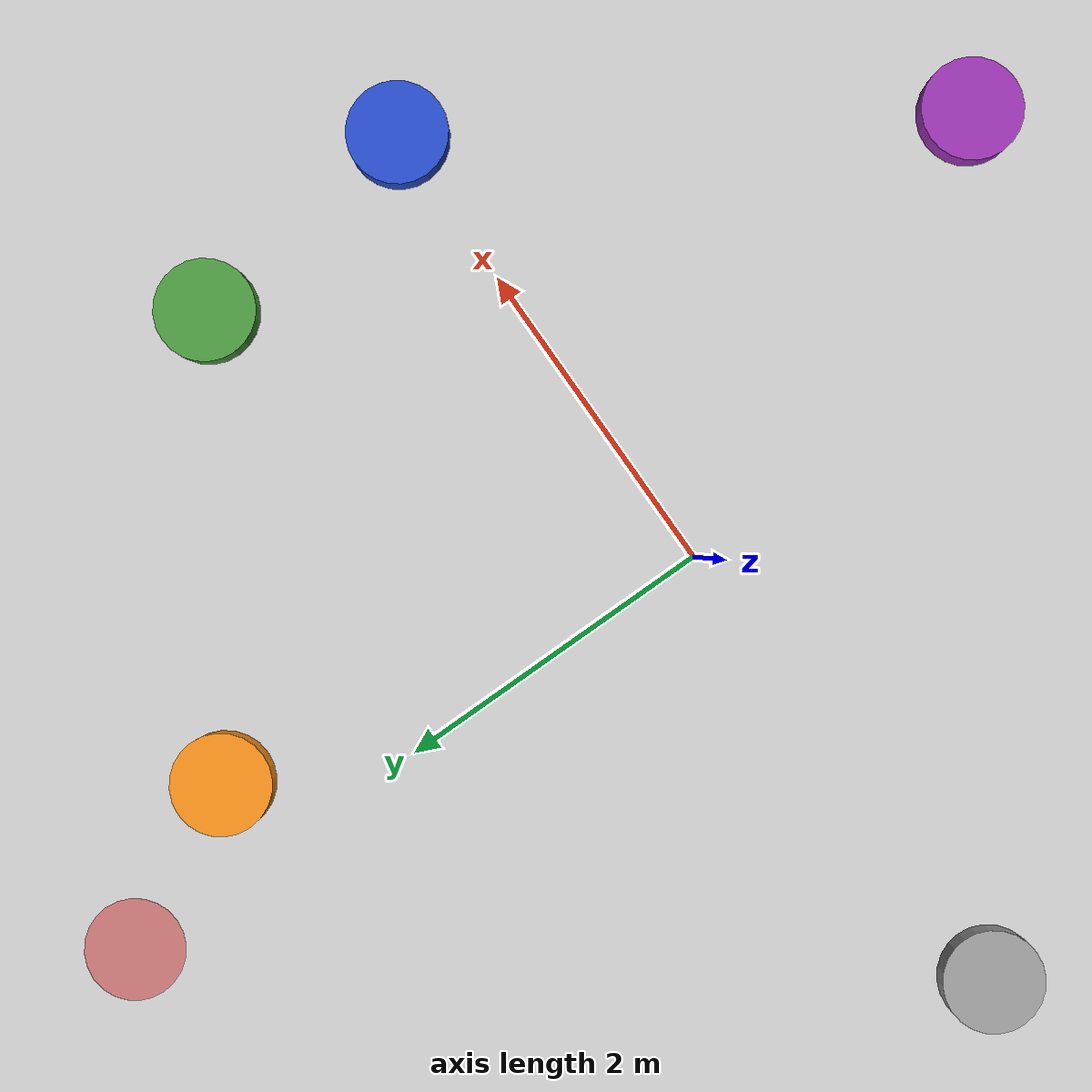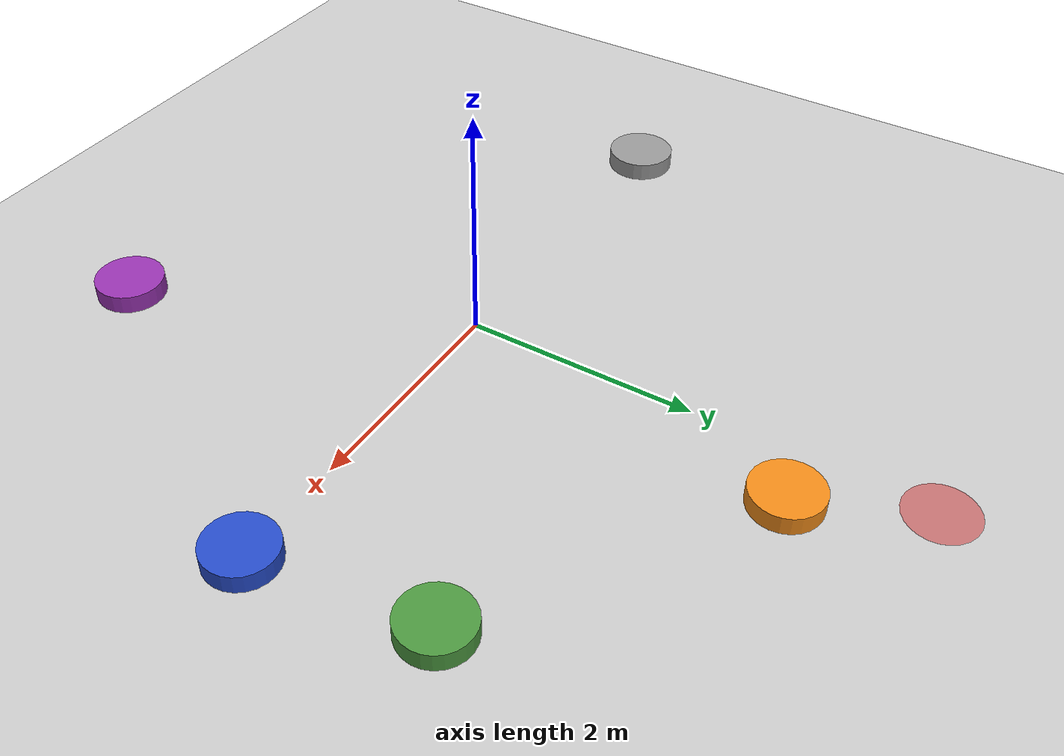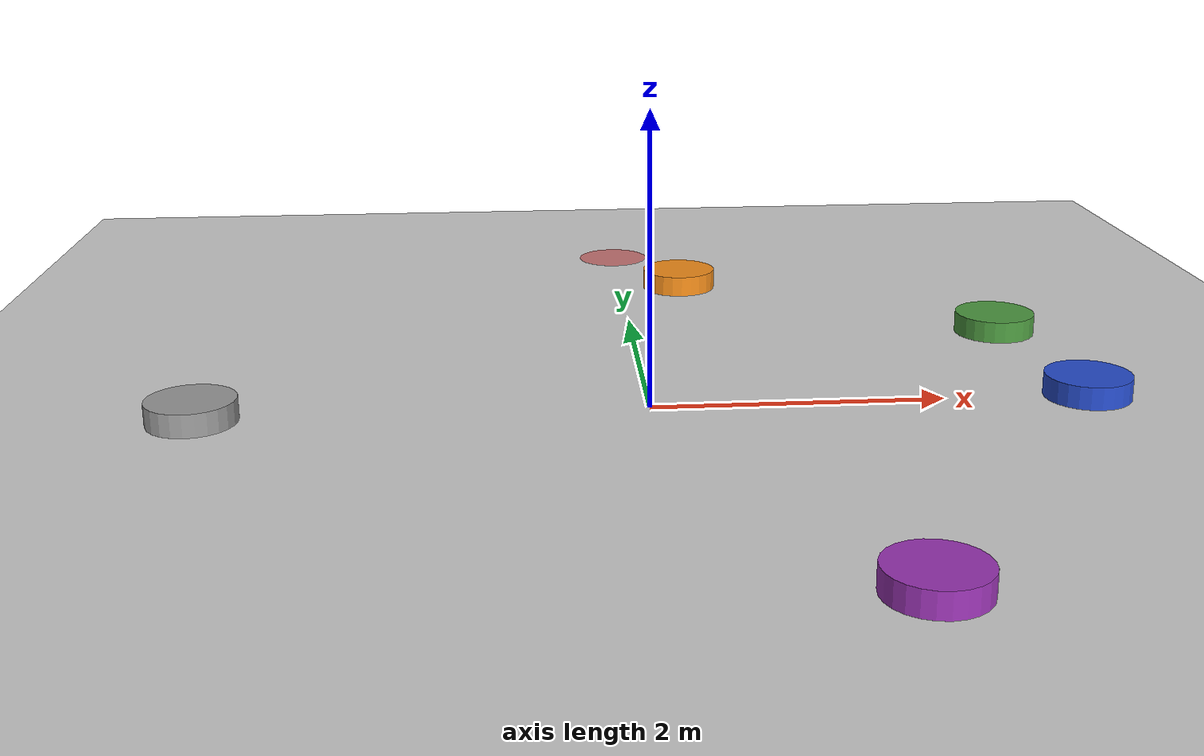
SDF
<sdf version="1.4">
 <world name="default">
  <physics name="default" default="true" type="simbody">
   <real_time_update_rate>1000.0</real_time_update_rate>
   <max_step_size>0.001</max_step_size>
   <real_time_factor>1</real_time_factor>
  </physics>
  <model name="human_1">
   <pose>2.8 1.5 0 0 0 0</pose>
   <kinematic>true</kinematic>
   <link name="link">
    <collision name="collision">
     <geometry><cylinder><radius>0.3</radius><length>0.3</length></cylinder></geometry>
    </collision>
    <visual name="visual">
     <geometry><cylinder><radius>0.3</radius><length>0.3</length></cylinder></geometry>
     <material>
      <script><uri>file://media/materials/scripts/gazebo.material</uri><name>Gazebo/Grass</name></script>
     </material>
    </visual>
   </link>
   <plugin name="human_1" filename="libobstacle_2.so"/>
  </model>
  <model name="human_2">
   <pose>3 0 0 0 0 0</pose>
   <kinematic>true</kinematic>
   <link name="link">
    <collision name="collision">
     <geometry><cylinder><radius>0.3</radius><length>0.3</length></cylinder></geometry>
    </collision>
    <visual name="visual">
     <geometry><cylinder><radius>0.3</radius><length>0.3</length></cylinder></geometry>
     <material>
      <script><uri>file://media/materials/scripts/gazebo.material</uri><name>Gazebo/Blue</name></script>
     </material>
    </visual>
   </link>
   <plugin name="human_2" filename="libobstacle_2.so"/>
  </model>
  <model name="human_3">
   <pose>0.5 3 0 0 0 0</pose>
   <kinematic>true</kinematic>
   <link name="link">
    <collision name="collision">
     <geometry><cylinder><radius>0.3</radius><length>0.3</length></cylinder></geometry>
    </collision>
    <visual name="visual">
     <geometry><cylinder><radius>0.3</radius><length>0.3</length></cylinder></geometry>
     <material>
      <script><uri>file://media/materials/scripts/gazebo.material</uri><name>Gazebo/Orange</name></script>
     </material>
    </visual>
   </link>
   <plugin name="human_3" filename="libobstacle_2.so"/>
  </model>
  <model name="human_4">
   <pose>1.2 -2.8 0 0 0 0</pose>
   <kinematic>true</kinematic>
   <link name="link">
    <collision name="collision">
     <geometry><cylinder><radius>0.3</radius><length>0.3</length></cylinder></geometry>
    </collision>
    <visual name="visual">
     <geometry><cylinder><radius>0.3</radius><length>0.3</length></cylinder></geometry>
     <material>
      <script><uri>file://media/materials/scripts/gazebo.material</uri><name>Gazebo/Purple</name></script>
     </material>
    </visual>
   </link>
   <plugin name="human_4" filename="libobstacle_2.so"/>
  </model>
  <model name="human_5">
   <pose>-3 0 0 0 0 0</pose>
   <kinematic>true</kinematic>
   <link name="link">
    <collision name="collision">
     <geometry><cylinder><radius>0.3</radius><length>0.3</length></cylinder></geometry>
    </collision>
    <visual name="visual">
     <geometry><cylinder><radius>0.3</radius><length>0.3</length></cylinder></geometry>
     <material>
      <script><uri>file://media/materials/scripts/gazebo.material</uri><name>Gazebo/Grey</name></script>
     </material>
    </visual>
   </link>
   <plugin name="human_5" filename="libobstacle_2.so"/>
  </model>
  <include><uri>model://ground_plane</uri></include>
  <model name="goal">
   <pose>0 4 0.001 0 0 0</pose>
   <static>true</static>
   <link name="goal">
    <visual name="goal1">
     <geometry><cylinder><radius>0.3</radius><length>0</length></cylinder></geometry>
     <material>
      <script><uri>file://media/materials/scripts/gazebo.material</uri><name>Gazebo/RedTransparent</name></script>
     </material>
    </visual>
   </link>
  </model>
  <light name="sun" type="directional">
   <pose>0 0 20 0 -0 0</pose>
   <diffuse>0.8 0.8 0.8 1</diffuse>
   <specular>0.2 0.2 0.2 1</specular>
   <attenuation>
    <range>1000</range>
    <constant>0.9</constant>
    <linear>0.01</linear>
    <quadratic>0.001</quadratic>
   </attenuation>
   <direction>0 0.5 -0.9</direction>
  </light>
  <light name="point_light" type="point">
   <pose>0 -0.377195 6.59868 0 -0 0</pose>
   <diffuse>0.784314 0.784314 0.784314 1</diffuse>
   <specular>0.0980392 0.0980392 0.0980392 1</specular>
   <attenuation>
    <range>50</range>
    <constant>0.8</constant>
    <linear>0</linear>
    <quadratic>0.001</quadratic>
   </attenuation>
   <cast_shadows>0</cast_shadows>
   <direction>0 0 -1</direction>
  </light>
  <scene><ambient>0.2 0.2 0.2 1</ambient><background>0.7 0.7 0.7 1</background><shadows>true</shadows></scene>
 </world>
</sdf>
